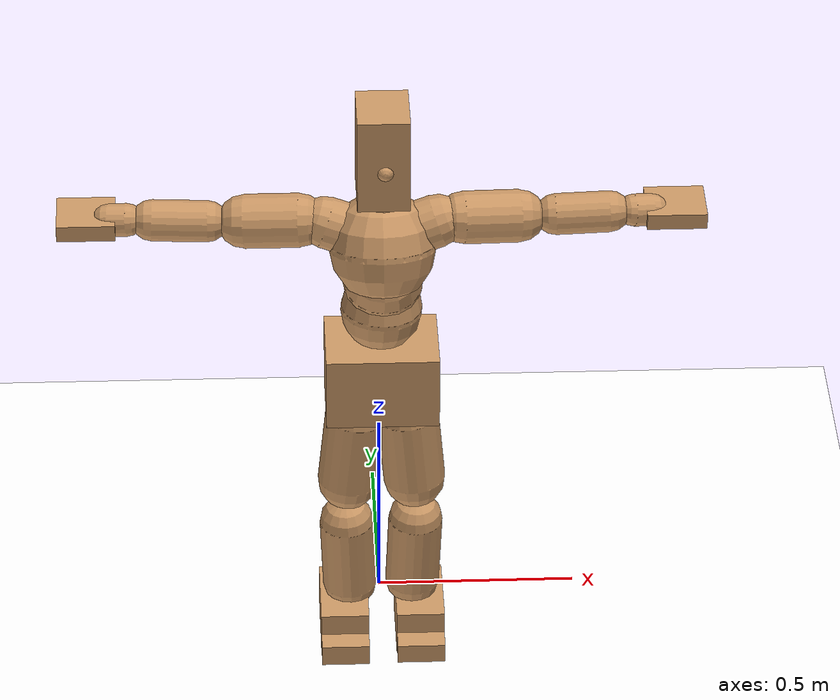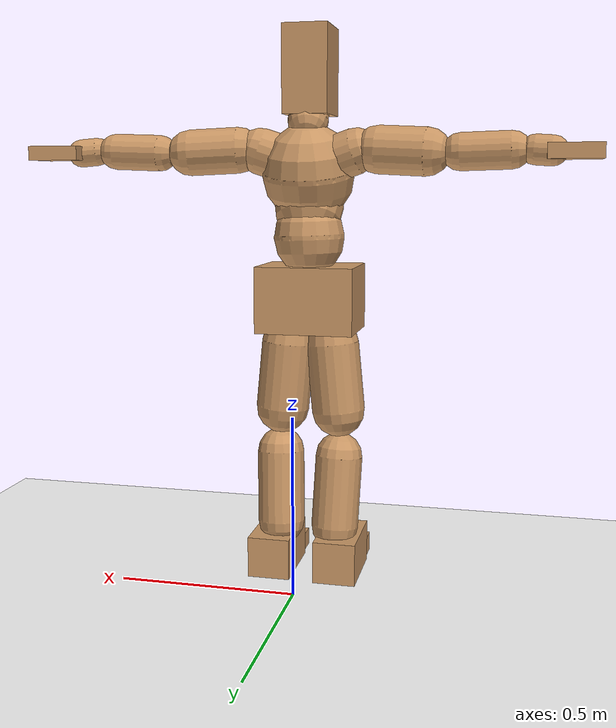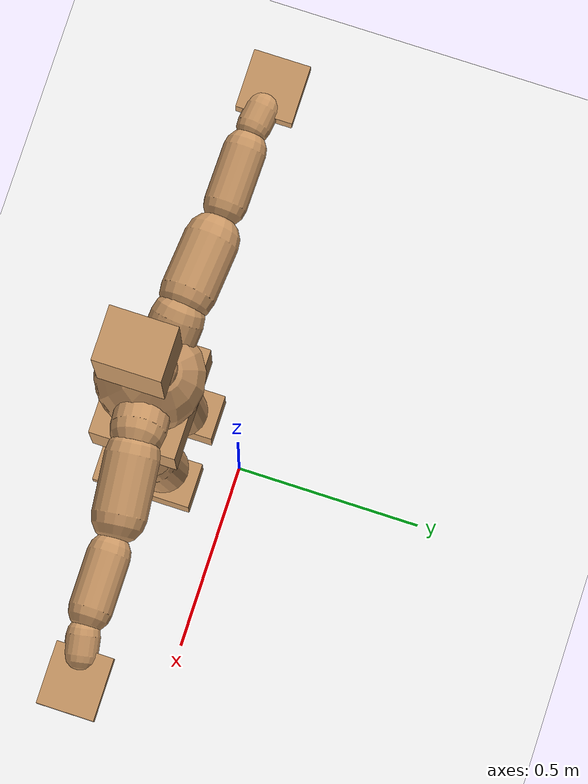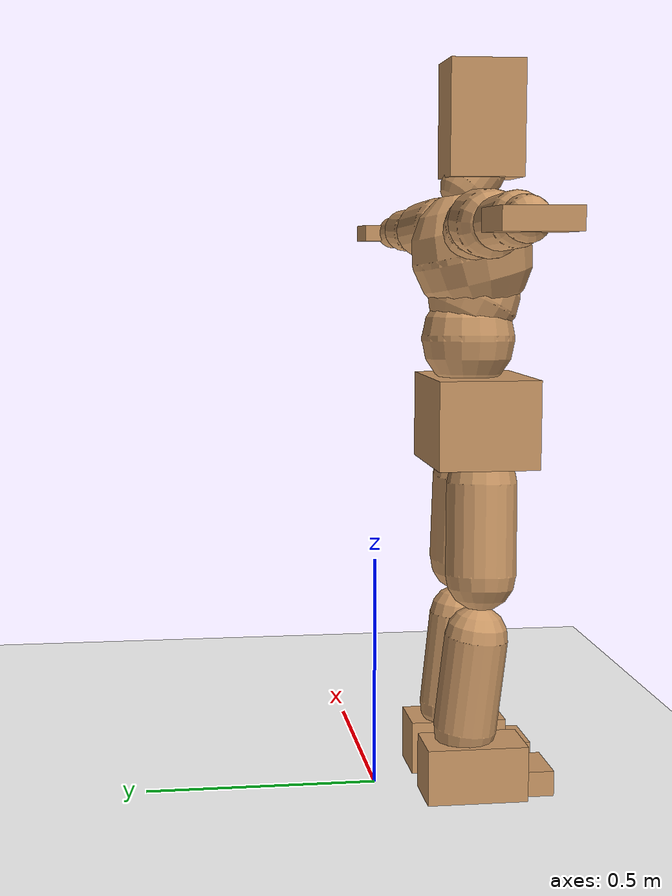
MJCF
<mujoco model="humanoid">
  <option integrator="implicitfast" />

  <visual>
    <global offwidth="1280" offheight="960" />
    <headlight active="1" ambient="0.34 0.34 0.34" diffuse="0.5 0.5 0.5" />
  </visual>

  <default>
    <joint damping="2" stiffness="2" armature="0.01" limited="true" solimplimit="0 .99 .01" />
    <geom condim="1" friction="0.7 0.005 0.0001" solimp=".99 .99 .003" solref="0.015 1" margin="0.001" rgba="0.8 0.6 .4 1" />
    <default class="smplcontact">
      <geom condim="3" friction="1. 0.005 0.0001" solref="0.015 1" solimp="0.98 0.98 0.001" priority="1" />
    </default>
    <default class="stiff_medium">
      <joint stiffness="10" />
    </default>
    <default class="stiff_medium_higher">
      <joint stiffness="50" />
    </default>
    <default class="stiff_high">
      <joint stiffness="100" />
    </default>
  </default>

  <asset>
    <texture type="skybox" builtin="gradient" rgb1="0.99 0.99 0.99" rgb2="0.608 0.828 0.892" width="100" />
    <texture builtin="flat" height="1278" mark="cross" markrgb="1 1 1" name="texgeom" random="0.01" rgb1="0.8 0.6 0.4" rgb2="0.8 0.6 0.4" type="cube" width="127" />
    <texture name="texplane" type="2d" builtin="checker" markrgb="1 1 1" rgb1="0.756 0.772 0.76" rgb2="0.6 0.6 0.6" width="100" height="100" />
    <material name="MatPlane" reflectance="0.5" texture="texplane" texrepeat="1 1" texuniform="true" />
    <material name="geom" texture="texgeom" texuniform="true" />
  </asset>

  <worldbody>
    <light name="tracking_light" pos="0 0 7" dir="0 0 -1" directional="true" cutoff="100" exponent="1" diffuse="1 1 1" specular="0.1 0.1 0.1" mode="trackcom" />
    <camera name="back" pos="0 3 2.4" xyaxes="-1 0 0 0 -1 2" mode="trackcom" />
    <camera name="side" pos="-3 0 2.4" xyaxes="0 -1 0 1 0 2" mode="trackcom" />
    <camera name="front_side" pos="-2.8 -2.8 0.8" xyaxes="0.5 -0.5 0 0.1 0.1 1" mode="trackcom" />
    <geom condim="3" name="floor" pos="0 0 0" rgba="1 1 1 1" size="100 100 .2" type="plane" material="MatPlane" />
    <body name="Pelvis" pos="-0.0018 -0.2233 0.815315" euler="90 0 0">
      <site name="Pelvis" size="0.01" />
      <freejoint name="Pelvis" />
      <geom type="box" pos="-0.0000 -0.0121 -0.0055" size="0.13897 0.09386 0.1079" quat="1.0000 0.0000 0.0000 0.0000" density="3165.830099" name="Pelvis" />
      <body name="L_Hip" pos="0.059075 -0.07769 -0.00578">
        <joint name="L_Hip_x" type="hinge" pos="0 0 0" axis="1 0 0" stiffness="13.073780909090909" range="-160.0 22.92" class="stiff_medium" damping="18.606181751312334" armature="0.011768762457390104"/>
        <joint name="L_Hip_y" type="hinge" pos="0 0 0" axis="0 1 0" stiffness="13.169240454545456" range="-70.0 70.0" class="stiff_medium" damping="15.891079179926692" armature="0.019175471689070602"/>
        <joint name="L_Hip_z" type="hinge" pos="0 0 0" axis="0 0 1" stiffness="13.149466477272727" range="-28.65 90.0" class="stiff_medium" damping="12.433800043881977" armature="0.011757084121887829"/>
        <geom type="capsule" density="2040.816327" fromto="0.005865 -0.06375 -0.000765 0.02329 -0.25517 -0.00306" size="0.076875" name="L_Hip" />
        <body name="L_Knee" pos="0.029155 -0.31892 -0.003825">
          <joint name="L_Knee_x" type="hinge" pos="0 0 0" axis="1 0 0" range="-5.16 171.89" damping="10.574349040779882" armature="0.012726679054983455" stiffness="2.745631272727273"/>
          <joint name="L_Knee_y" type="hinge" pos="0 0 0" axis="0 1 0" range="-4.58 6.88" damping="13.277882484058297" armature="0.02066682769323447" stiffness="2.6658385523255816"/>
          <joint name="L_Knee_z" type="hinge" pos="0 0 0" axis="0 0 1" range="-6.88 4.58" damping="10.590751418639035" armature="0.012665006073448865" stiffness="2.767567159090909"/>
          <geom type="capsule" density="1234.567901" fromto="-0.002295 -0.06766 -0.007395 -0.009265 -0.27064 -0.02975" size="0.067625" name="L_Knee" />
          <body name="L_Ankle" pos="-0.01156 -0.3383 -0.037145">
            <joint name="L_Ankle_x" type="hinge" pos="0 0 0" axis="1 0 0" range="-45.84 45.84" class="stiff_medium" damping="10.858081168115852" armature="0.01972671488124411" stiffness="16.60156"/>
            <joint name="L_Ankle_y" type="hinge" pos="0 0 0" axis="0 1 0" range="-74.48 22.92" class="stiff_medium" damping="5.484003572055841" armature="0.020128158758254064" stiffness="16.60156"/>
            <joint name="L_Ankle_z" type="hinge" pos="0 0 0" axis="0 0 1" range="-4.58 4.58" class="stiff_medium" damping="11.662080639657317" armature="0.022756249152668318" stiffness="16.60156"/>
            <geom type="box" pos="0.019805 -0.020315 0.02057" size="0.060375 0.058 0.10625" quat="1.0000 0.0000 0.0000 0.0000" density="449.071558" name="L_Ankle" class="smplcontact" />
            <body name="L_Toe" pos="0.02244 -0.04743 0.101405">
              <joint name="L_Toe_x" type="hinge" pos="0 0 0" axis="1 0 0" range="-91.67 22.92" armature="0.024280120203136288" damping="4.015409679520032" stiffness="3.320312"/>
              <joint name="L_Toe_y" type="hinge" pos="0 0 0" axis="0 1 0" range="-4.58 4.58" armature="0.02612278546549334" damping="4.164992150160745" stiffness="3.320312"/>
              <joint name="L_Toe_z" type="hinge" pos="0 0 0" axis="0 0 1" range="-4.58 4.58" armature="0.02984855544497264" damping="4.452112236379672" stiffness="3.320312"/>
              <geom type="box" pos="-0.00255 0.004675 0.02108" size="0.05975 0.025 0.062" quat="1.0000 0.0000 0.0000 0.0000" density="423.206892" name="L_Toe" class="smplcontact" />
            </body>
          </body>
        </body>
      </body>
      <body name="R_Hip" pos="-0.057545 -0.076925 -0.003655">
        <joint name="R_Hip_x" type="hinge" pos="0 0 0" axis="1 0 0" stiffness="13.073780909090909" range="-160.0 22.92" class="stiff_medium" damping="18.606181751312334" armature="0.011768762457390104"/>
        <joint name="R_Hip_y" type="hinge" pos="0 0 0" axis="0 1 0" stiffness="13.169240454545456" range="-70.0 70.0" class="stiff_medium" damping="15.891079179926692" armature="0.019175471689070602"/>
        <joint name="R_Hip_z" type="hinge" pos="0 0 0" axis="0 0 1" stiffness="13.149466477272727" range="-90.0 28.65" class="stiff_medium" damping="12.433800043881977" armature="0.011757084121887829"/>
        <geom type="capsule" density="2040.816327" fromto="-0.006545 -0.065025 -0.00153 -0.02601 -0.260185 -0.006035" size="0.07575" name="R_Hip" />
        <body name="R_Knee" pos="-0.032555 -0.32521 -0.007565">
          <joint name="R_Knee_x" type="hinge" pos="0 0 0" axis="1 0 0" range="-5.16 171.89" damping="10.574349040779882" armature="0.012726679054983455" stiffness="2.745631272727273"/>
          <joint name="R_Knee_y" type="hinge" pos="0 0 0" axis="0 1 0" range="-6.88 4.58" damping="13.277882484058297" armature="0.02066682769323447" stiffness="2.6658385523255816"/>
          <joint name="R_Knee_z" type="hinge" pos="0 0 0" axis="0 0 1" range="-4.58 6.88" damping="10.590751418639035" armature="0.012665006073448865" stiffness="2.767567159090909"/>
          <geom type="capsule" density="1234.567901" fromto="0.00272 -0.067745 -0.007225 0.01071 -0.270895 -0.02873" size="0.067625" name="R_Knee" />
          <body name="R_Ankle" pos="0.01343 -0.33864 -0.035955">
            <joint name="R_Ankle_x" type="hinge" pos="0 0 0" axis="1 0 0" range="-45.84 45.84" class="stiff_medium" damping="10.858081168115852" armature="0.01972671488124411" stiffness="16.60156"/>
            <joint name="R_Ankle_y" type="hinge" pos="0 0 0" axis="0 1 0" range="-22.92 74.48" class="stiff_medium" damping="5.484003572055841" armature="0.020128158758254064" stiffness="16.60156"/>
            <joint name="R_Ankle_z" type="hinge" pos="0 0 0" axis="0 0 1" range="-4.58 4.58" class="stiff_medium" damping="11.662080639657317" armature="0.022756249152668318" stiffness="16.60156"/>
            <geom type="box" pos="-0.01802 -0.01479 0.02176" size="0.060375 0.05975 0.108125" quat="1.0000 0.0000 0.0000 0.0000" density="434.700981" name="R_Ankle" class="smplcontact" />
            <body name="R_Toe" pos="-0.02159 -0.040885 0.104805">
              <joint name="R_Toe_x" type="hinge" pos="0 0 0" axis="1 0 0" range="-91.67 22.92" armature="0.024280120203136288" damping="4.015409679520032" stiffness="3.320312"/>
              <joint name="R_Toe_y" type="hinge" pos="0 0 0" axis="0 1 0" range="-4.58 4.58" armature="0.02612278546549334" damping="4.164992150160745" stiffness="3.320312"/>
              <joint name="R_Toe_z" type="hinge" pos="0 0 0" axis="0 0 1" range="-4.58 4.58" armature="0.02984855544497264" damping="4.452112236379672" stiffness="3.320312"/>
              <geom type="box" pos="0.00357 0.003825 0.019295" size="0.059875 0.027 0.061625" quat="1.0000 0.0000 0.0000 0.0000" density="407.384095" name="R_Toe" class="smplcontact" />
            </body>
          </body>
        </body>
      </body>
      <body name="Torso" pos="-0.0023 0.10028 -0.024564">
        <joint name="Torso_x" type="hinge" pos="0 0 0" axis="1 0 0" range="-25.78 57.3" class="stiff_medium" damping="21.78203772208357" armature="0.01368048624538345" stiffness="15.413914999999998"/>
        <joint name="Torso_y" type="hinge" pos="0 0 0" axis="0 1 0" range="-57.3 57.3" class="stiff_high" damping="28.75972056541958" armature="0.01343894671894338" stiffness="153.86650909090912"/>
        <joint name="Torso_z" type="hinge" pos="0 0 0" axis="0 0 1" range="-34.38 34.38" class="stiff_high" damping="29.14308243891432" armature="0.01331601534386346" stiffness="159.4544674418605"/>
        <geom type="capsule" density="2040.816327" fromto="0.0023 0.055936 0.00046 0.00276 0.068356 0.000552" size="0.09997" name="Torso" />
        <body name="Spine" pos="0.00506 0.124384 0.001012">
          <joint name="Spine_x" type="hinge" pos="0 0 0" axis="1 0 0" stiffness="14.839179545454543" range="-25.78 57.3" class="stiff_medium" damping="20.93586082016467" armature="0.013127717949895144"/>
          <joint name="Spine_y" type="hinge" pos="0 0 0" axis="0 1 0" stiffness="14.982025681818186" range="-57.3 57.3" class="stiff_high" damping="11.291535853835345" armature="0.013297056820600122"/>
          <joint name="Spine_z" type="hinge" pos="0 0 0" axis="0 0 1" stiffness="29.385771363636366" range="-34.38 34.38" class="stiff_high" damping="16.470994384249583" armature="0.012822421429407213"/>
          <geom type="capsule" density="2040.816327" fromto="0.000644 0.021896 0.010488 0.000736 0.026772 0.01288" size="0.09815" name="Spine" />
          <body name="Chest" pos="0.00138 0.048668 0.023368">
            <joint name="Chest_x" type="hinge" pos="0 0 0" axis="1 0 0" stiffness="13.892651395348839" range="-25.78 57.3" class="stiff_medium" damping="20.074418444732594" armature="0.012891940395965527"/>
            <joint name="Chest_y" type="hinge" pos="0 0 0" axis="0 1 0" stiffness="14.186495116279069" range="-57.3 57.3" class="stiff_high" damping="10.937424865746422" armature="0.013175741888822763"/>
            <joint name="Chest_z" type="hinge" pos="0 0 0" axis="0 0 1" stiffness="28.265347272727276" range="-34.38 34.38" class="stiff_high" damping="16.059717572286047" armature="0.012673278678041022"/>
            <geom type="capsule" density="2040.816327" fromto="-0.000828 0.062744 -0.015916 -0.00092 0.076636 -0.019504" size="0.13026" name="Chest" />
            <body name="Neck" pos="-0.002576 0.196788 -0.039468">
              <joint name="Neck_x" type="hinge" pos="0 0 0" axis="1 0 0" range="-28.65 57.3" class="stiff_medium_higher" damping="11.982959901574276" armature="0.011956978304620915" stiffness="60.04498977272728"/>
              <joint name="Neck_y" type="hinge" pos="0 0 0" axis="0 1 0" range="-40.11 40.11" class="stiff_medium_higher" damping="12.449102292180257" armature="0.012985674807470574" stiffness="59.673505681818185"/>
              <joint name="Neck_z" type="hinge" pos="0 0 0" axis="0 0 1" range="-40.11 40.11" class="stiff_medium_higher" damping="11.853451088854268" armature="0.011933898341970265" stiffness="58.86773068181819"/>
              <geom type="capsule" density="1000" fromto="0.00092 0.01196 0.009476 0.003772 0.04784 0.037812" size="0.05668" name="Neck" />
              <body name="Head" pos="0.0052 0.065 0.0513">
                <joint name="Head_x" type="hinge" pos="0 0 0" axis="1 0 0" range="-28.65 57.3" class="stiff_medium_higher" damping="2.367934413545384" armature="0.012109088406980932" stiffness="57.88125000000001"/>
                <joint name="Head_y" type="hinge" pos="0 0 0" axis="0 1 0" range="-40.11 40.11" class="stiff_medium_higher" damping="2.425797531188864" armature="0.012708117184584793" stiffness="57.88125000000001"/>
                <joint name="Head_z" type="hinge" pos="0 0 0" axis="0 0 1" range="-40.11 40.11" class="stiff_medium_higher" damping="2.3650325814463797" armature="0.012079427947960106" stiffness="57.88125000000001"/>
                <geom type="box" pos="-0.0042 0.0876 -0.0116" size="0.06363 0.12117 0.0798" quat="1.0000 0.0000 0.0000 0.0000" density="1018.069894" name="Head" />
                <geom type="capsule" name="nose" size="0.021 0.0105" pos="0 0.07 0.05" quat="1 0 0 0" mass="0" contype="0" conaffinity="0" />
              </body>
            </body>
            <body name="L_Thorax" pos="0.069344 0.107096 -0.030008">
              <joint name="L_Thorax_x" type="hinge" pos="0 0 0" axis="1 0 0" range="-10.89 4.58" class="stiff_medium_higher" damping="31.926547920163337" armature="0.018089847829593754" stiffness="70.43346022727273"/>
              <joint name="L_Thorax_y" type="hinge" pos="0 0 0" axis="0 1 0" range="-28.65 17.19" class="stiff_medium_higher" damping="26.657341715226814" armature="0.012729077692042874" stiffness="69.78253693181817"/>
              <joint name="L_Thorax_z" type="hinge" pos="0 0 0" axis="0 0 1" range="-31.51 40.11" class="stiff_medium_higher" damping="26.65448952524613" armature="0.01272417509009733" stiffness="69.79448636363637"/>
              <geom type="capsule" density="1000" fromto="0.016016 0.005368 -0.001584 0.064064 0.021472 -0.006248" size="0.065125" name="L_Thorax" />
              <body name="L_Shoulder" pos="0.08008 0.02684 -0.007832">
                <joint name="L_Shoulder_x" type="hinge" pos="0 0 0" axis="1 0 0" range="-97.4 97.4" class="stiff_medium" damping="10.106316520013454" armature="0.0200647915697496" stiffness="14.139974886363635"/>
                <joint name="L_Shoulder_y" type="hinge" pos="0 0 0" axis="0 1 0" range="-108.86 80.21" class="stiff_medium" damping="8.069438843362464" armature="0.012872507672728366" stiffness="14.05144568181818"/>
                <joint name="L_Shoulder_z" type="hinge" pos="0 0 0" axis="0 0 1" range="-97.4 85.94" class="stiff_medium" damping="8.05582145378768" armature="0.01286568736071838" stiffness="14.011485113636365"/>
                <geom type="capsule" density="1000" fromto="0.045672 -0.002288 -0.00484 0.182776 -0.008976 -0.01936" size="0.064625" name="L_Shoulder" />
                <body name="L_Elbow" pos="0.228448 -0.011264 -0.0242">
                  <joint name="L_Elbow_x" type="hinge" pos="0 0 0" axis="1 0 0" range="-17.19 4.58" damping="9.241614845448577" armature="0.02348223130281801" stiffness="2.9096875454545454"/>
                  <joint name="L_Elbow_y" type="hinge" pos="0 0 0" axis="0 1 0" range="-180.0 17.19" damping="7.028392132676079" armature="0.013583098268946997" stiffness="2.909397840909091"/>
                  <joint name="L_Elbow_z" type="hinge" pos="0 0 0" axis="0 0 1" range="-100.84 4.58" damping="7.021007416718318" armature="0.013547290277453805" stiffness="2.910961181818182"/>
                  <geom type="capsule" density="1000" fromto="0.043824 0.001584 -0.000176 0.175472 0.006336 -0.000792" size="0.050625" name="L_Elbow" />
                  <body name="L_Wrist" pos="0.219296 0.00792 -0.001056">
                    <joint name="L_Wrist_x" type="hinge" pos="0 0 0" axis="1 0 0" range="-180.0 22.92" armature="0.02507321395586134" damping="4.04143069166319" stiffness="3.2570938181818185"/>
                    <joint name="L_Wrist_y" type="hinge" pos="0 0 0" axis="0 1 0" range="-17.19 17.19" armature="0.016443129591718578" damping="3.256601051716133" stiffness="3.2248880454545454"/>
                    <joint name="L_Wrist_z" type="hinge" pos="0 0 0" axis="0 0 1" range="-22.92 22.92" armature="0.015946735012677977" damping="3.2128653230319313" stiffness="3.236557068181818"/>
                    <geom type="capsule" density="1000" fromto="0.014784 -0.001408 -0.00264 0.059136 -0.00572 -0.01056" size="0.03975" name="L_Wrist" class="smplcontact" />
                    <body name="L_Hand" pos="0.07392 -0.007216 -0.013112">
                      <joint name="L_Hand_x" type="hinge" pos="0 0 0" axis="1 0 0" range="-17.19 17.19" armature="0.029846982595580208" damping="4.529878644562279" stiffness="3.4375"/>
                      <joint name="L_Hand_y" type="hinge" pos="0 0 0" axis="0 1 0" range="-51.57 51.57" armature="0.022407650382607756" damping="3.924953456799562" stiffness="3.4375"/>
                      <joint name="L_Hand_z" type="hinge" pos="0 0 0" axis="0 0 1" range="-91.67 91.67" armature="0.020424594737039108" damping="3.747253511802262" stiffness="3.4375"/>
                      <geom type="box" pos="0.043384 0.00088 -0.005104" size="0.073125 0.01975 0.06725" quat="1.0000 0.0000 0.0000 0.0000" density="400.552564" name="L_Hand" class="smplcontact" />
                    </body>
                  </body>
                </body>
              </body>
            </body>
            <body name="R_Thorax" pos="-0.071984 0.104544 -0.033968">
              <joint name="R_Thorax_x" type="hinge" pos="0 0 0" axis="1 0 0" range="-10.89 4.58" class="stiff_medium_higher" damping="31.926547920163337" armature="0.018089847829593754" stiffness="70.43346022727273"/>
              <joint name="R_Thorax_y" type="hinge" pos="0 0 0" axis="0 1 0" range="-17.19 28.65" class="stiff_medium_higher" damping="26.657341715226814" armature="0.012729077692042874" stiffness="69.78253693181817"/>
              <joint name="R_Thorax_z" type="hinge" pos="0 0 0" axis="0 0 1" range="-40.11 31.51" class="stiff_medium_higher" damping="26.65448952524613" armature="0.01272417509009733" stiffness="69.79448636363637"/>
              <geom type="capsule" density="1000" fromto="-0.016896 0.00572 -0.001584 -0.067584 0.02288 -0.006424" size="0.063875" name="R_Thorax" />
              <body name="R_Shoulder" pos="-0.08448 0.028688 -0.008008">
                <joint name="R_Shoulder_x" type="hinge" pos="0 0 0" axis="1 0 0" range="-97.4 97.4" class="stiff_medium" damping="10.106316520013454" armature="0.0200647915697496" stiffness="14.139974886363635"/>
                <joint name="R_Shoulder_y" type="hinge" pos="0 0 0" axis="0 1 0" range="-80.21 108.86" class="stiff_medium" damping="8.069438843362464" armature="0.012872507672728366" stiffness="14.05144568181818"/>
                <joint name="R_Shoulder_z" type="hinge" pos="0 0 0" axis="0 0 1" range="-85.94 97.4" class="stiff_medium" damping="8.05582145378768" armature="0.01286568736071838" stiffness="14.011485113636365"/>
                <geom type="capsule" density="1000" fromto="-0.044616 -0.002376 -0.003784 -0.17864 -0.009416 -0.015048" size="0.066375" name="R_Shoulder" />
                <body name="R_Elbow" pos="-0.223256 -0.011704 -0.018832">
                  <joint name="R_Elbow_x" type="hinge" pos="0 0 0" axis="1 0 0" range="-17.19 4.58" damping="9.241614845448577" armature="0.02348223130281801" stiffness="2.9096875454545454"/>
                  <joint name="R_Elbow_y" type="hinge" pos="0 0 0" axis="0 1 0" range="-17.19 180.0" damping="7.028392132676079" armature="0.013583098268946997" stiffness="2.909397840909091"/>
                  <joint name="R_Elbow_z" type="hinge" pos="0 0 0" axis="0 0 1" range="-4.58 100.84" damping="7.021007416718318" armature="0.013547290277453805" stiffness="2.910961181818182"/>
                  <geom type="capsule" density="1000" fromto="-0.044968 0.001408 -0.000968 -0.179696 0.005456 -0.003872" size="0.051" name="R_Elbow" />
                  <body name="R_Wrist" pos="-0.224664 0.006864 -0.004928">
                    <joint name="R_Wrist_x" type="hinge" pos="0 0 0" axis="1 0 0" range="-180.0 22.92" armature="0.02507321395586134" damping="4.04143069166319" stiffness="3.2570938181818185"/>
                    <joint name="R_Wrist_y" type="hinge" pos="0 0 0" axis="0 1 0" range="-17.19 17.19" armature="0.016443129591718578" damping="3.256601051716133" stiffness="3.2248880454545454"/>
                    <joint name="R_Wrist_z" type="hinge" pos="0 0 0" axis="0 0 1" range="-22.92 22.92" armature="0.015946735012677977" damping="3.2128653230319313" stiffness="3.236557068181818"/>
                    <geom type="capsule" density="1000" fromto="-0.014872 -0.001056 -0.001848 -0.059576 -0.004312 -0.007304" size="0.04075" name="R_Wrist" class="smplcontact" />
                    <body name="R_Hand" pos="-0.074448 -0.005368 -0.009064">
                      <joint name="R_Hand_x" type="hinge" pos="0 0 0" axis="1 0 0" range="-17.19 17.19" armature="0.029846982595580208" damping="4.529878644562279" stiffness="3.4375"/>
                      <joint name="R_Hand_y" type="hinge" pos="0 0 0" axis="0 1 0" range="-51.57 51.57" armature="0.022407650382607756" damping="3.924953456799562" stiffness="3.4375"/>
                      <joint name="R_Hand_z" type="hinge" pos="0 0 0" axis="0 0 1" range="-91.67 91.67" armature="0.020424594737039108" damping="3.747253511802262" stiffness="3.4375"/>
                      <geom type="box" pos="-0.040656 -0.000792 -0.006952" size="0.071125 0.0205 0.06825" quat="1.0000 0.0000 0.0000 0.0000" density="403.679611" name="R_Hand" class="smplcontact" />
                    </body>
                  </body>
                </body>
              </body>
            </body>
          </body>
        </body>
      </body>
    </body>
  </worldbody>
  <actuator>
    <general name="L_Hip_x" joint="L_Hip_x" biastype="affine" gainprm="375.6490306603441" biasprm="-281.51087427793556 -235.32805636363636 -2.4808242335083115" ctrllimited="true" ctrlrange="-1 1" forcerange="-470.6561127272727 470.6561127272727" />
    <general name="L_Hip_y" joint="L_Hip_y" biastype="affine" gainprm="289.6067234575026" biasprm="0.0 -237.0463281818182 -3.1782158359853385" ctrllimited="true" ctrlrange="-1 1" forcerange="-474.0926563636364 474.0926563636364" />
    <general name="L_Hip_z" joint="L_Hip_z" biastype="affine" gainprm="245.07316066010682" biasprm="126.71924489252046 -236.69039659090907 -2.4867600087763955" ctrllimited="true" ctrlrange="-1 1" forcerange="-473.38079318181815 473.38079318181815" />
    <general name="L_Knee_x" joint="L_Knee_x" biastype="affine" gainprm="381.7930560250363" biasprm="359.538866032501 -247.1068145454546 -2.6435872601949706" ctrllimited="true" ctrlrange="-1 1" forcerange="-494.2136290909092 494.2136290909092" />
    <general name="L_Knee_y" joint="L_Knee_y" biastype="affine" gainprm="23.994314295355753" biasprm="4.815612816694435 -239.92546970930235 -3.3194706210145744" ctrllimited="true" ctrlrange="-1 1" forcerange="-479.8509394186047 479.8509394186047" />
    <general name="L_Knee_z" joint="L_Knee_z" biastype="affine" gainprm="24.90993919748141" biasprm="-4.999376976806915 -249.0810443181818 -2.647687854659759" ctrllimited="true" ctrlrange="-1 1" forcerange="-498.1620886363636 498.1620886363636" />
    <general name="L_Ankle_x" joint="L_Ankle_x" biastype="affine" gainprm="119.54003683702636" biasprm="0.0 -149.41404 -3.6193603893719506" ctrllimited="true" ctrlrange="-1 1" forcerange="-298.82808 298.82808" />
    <general name="L_Ankle_y" joint="L_Ankle_y" biastype="affine" gainprm="126.99825030460697" biasprm="-67.2282318860938 -149.41404 -3.656002381370561" ctrllimited="true" ctrlrange="-1 1" forcerange="-298.82808 298.82808" />
    <general name="L_Ankle_z" joint="L_Ankle_z" biastype="affine" gainprm="11.943572615915807" biasprm="0.0 -149.41404 -3.8873602132191056" ctrllimited="true" ctrlrange="-1 1" forcerange="-298.82808 298.82808" />
    <general name="L_Toe_x" joint="L_Toe_x" biastype="affine" gainprm="119.52960576923951" biasprm="-71.71359103442897 -119.531232 -1.606163871808013" ctrllimited="true" ctrlrange="-1 1" forcerange="-239.062464 239.062464" />
    <general name="L_Toe_y" joint="L_Toe_y" biastype="affine" gainprm="9.554858092732646" biasprm="0.0 -119.531232 -1.665996860064298" ctrllimited="true" ctrlrange="-1 1" forcerange="-239.062464 239.062464" />
    <general name="L_Toe_z" joint="L_Toe_z" biastype="affine" gainprm="9.554858092732646" biasprm="0.0 -119.531232 -1.780844894551869" ctrllimited="true" ctrlrange="-1 1" forcerange="-239.062464 239.062464" />
    <general name="R_Hip_x" joint="R_Hip_x" biastype="affine" gainprm="375.6490306603441" biasprm="-281.51087427793556 -235.32805636363636 -2.4808242335083115" ctrllimited="true" ctrlrange="-1 1" forcerange="-470.6561127272727 470.6561127272727" />
    <general name="R_Hip_y" joint="R_Hip_y" biastype="affine" gainprm="289.6067234575026" biasprm="0.0 -237.0463281818182 -3.1782158359853385" ctrllimited="true" ctrlrange="-1 1" forcerange="-474.0926563636364 474.0926563636364" />
    <general name="R_Hip_z" joint="R_Hip_z" biastype="affine" gainprm="245.07316066010682" biasprm="-126.71924489252046 -236.69039659090907 -2.4867600087763955" ctrllimited="true" ctrlrange="-1 1" forcerange="-473.38079318181815 473.38079318181815" />
    <general name="R_Knee_x" joint="R_Knee_x" biastype="affine" gainprm="381.7930560250363" biasprm="359.538866032501 -247.1068145454546 -2.6435872601949706" ctrllimited="true" ctrlrange="-1 1" forcerange="-494.2136290909092 494.2136290909092" />
    <general name="R_Knee_y" joint="R_Knee_y" biastype="affine" gainprm="23.994314295355753" biasprm="-4.815612816694435 -239.92546970930235 -3.3194706210145744" ctrllimited="true" ctrlrange="-1 1" forcerange="-479.8509394186047 479.8509394186047" />
    <general name="R_Knee_z" joint="R_Knee_z" biastype="affine" gainprm="24.90993919748141" biasprm="4.999376976806915 -249.0810443181818 -2.647687854659759" ctrllimited="true" ctrlrange="-1 1" forcerange="-498.1620886363636 498.1620886363636" />
    <general name="R_Ankle_x" joint="R_Ankle_x" biastype="affine" gainprm="119.54003683702636" biasprm="0.0 -149.41404 -3.6193603893719506" ctrllimited="true" ctrlrange="-1 1" forcerange="-298.82808 298.82808" />
    <general name="R_Ankle_y" joint="R_Ankle_y" biastype="affine" gainprm="126.99825030460697" biasprm="67.2282318860938 -149.41404 -3.656002381370561" ctrllimited="true" ctrlrange="-1 1" forcerange="-298.82808 298.82808" />
    <general name="R_Ankle_z" joint="R_Ankle_z" biastype="affine" gainprm="11.943572615915807" biasprm="0.0 -149.41404 -3.8873602132191056" ctrllimited="true" ctrlrange="-1 1" forcerange="-298.82808 298.82808" />
    <general name="R_Toe_x" joint="R_Toe_x" biastype="affine" gainprm="119.52960576923951" biasprm="-71.71359103442897 -119.531232 -1.606163871808013" ctrllimited="true" ctrlrange="-1 1" forcerange="-239.062464 239.062464" />
    <general name="R_Toe_y" joint="R_Toe_y" biastype="affine" gainprm="9.554858092732646" biasprm="0.0 -119.531232 -1.665996860064298" ctrllimited="true" ctrlrange="-1 1" forcerange="-239.062464 239.062464" />
    <general name="R_Toe_z" joint="R_Toe_z" biastype="affine" gainprm="9.554858092732646" biasprm="0.0 -119.531232 -1.780844894551869" ctrllimited="true" ctrlrange="-1 1" forcerange="-239.062464 239.062464" />
    <general name="Torso_x" joint="Torso_x" biastype="affine" gainprm="268.2057357277292" biasprm="101.75547412299017 -369.93395999999996 -5.8085433925556185" ctrllimited="true" ctrlrange="-1 1" forcerange="-554.9009399999999 554.9009399999999" />
    <general name="Torso_y" joint="Torso_y" biastype="affine" gainprm="369.30682346943945" biasprm="0.0 -369.27962181818185 -5.751944113083916" ctrllimited="true" ctrlrange="-1 1" forcerange="-553.9194327272728 553.9194327272728" />
    <general name="Torso_z" joint="Torso_z" biastype="affine" gainprm="229.63134683521818" biasprm="0.0 -382.6907218604652 -5.828616487782864" ctrllimited="true" ctrlrange="-1 1" forcerange="-574.0360827906977 574.0360827906977" />
    <general name="Spine_x" joint="Spine_x" biastype="affine" gainprm="258.2052040370345" biasprm="97.96133884505689 -356.14030909090906 -5.582896218710578" ctrllimited="true" ctrlrange="-1 1" forcerange="-534.2104636363636 534.2104636363636" />
    <general name="Spine_y" joint="Spine_y" biastype="affine" gainprm="359.59510268870724" biasprm="0.0 -359.56861636363647 -5.645767926917673" ctrllimited="true" ctrlrange="-1 1" forcerange="-539.3529245454547 539.3529245454547" />
    <general name="Spine_z" joint="Spine_z" biastype="affine" gainprm="211.59313891547092" biasprm="0.0 -352.6292563636364 -5.4903314614165275" ctrllimited="true" ctrlrange="-1 1" forcerange="-528.9438845454546 528.9438845454546" />
    <general name="Chest_x" joint="Chest_x" biastype="affine" gainprm="241.73539225423258" biasprm="91.71280168335832 -333.4236334883721 -5.353178251928692" ctrllimited="true" ctrlrange="-1 1" forcerange="-500.1354502325582 500.1354502325582" />
    <general name="Chest_y" joint="Chest_y" biastype="affine" gainprm="340.5009627184221" biasprm="0.0 -340.47588279069765 -5.468712432873211" ctrllimited="true" ctrlrange="-1 1" forcerange="-510.7138241860465 510.7138241860465" />
    <general name="Chest_z" joint="Chest_z" biastype="affine" gainprm="203.52549123053262" biasprm="0.0 -339.1841672727273 -5.353239190762016" ctrllimited="true" ctrlrange="-1 1" forcerange="-508.77625090909095 508.77625090909095" />
    <general name="Neck_x" joint="Neck_x" biastype="affine" gainprm="32.426682895962884" biasprm="10.808894298654295 -43.23239263636364 -0.958636792125942" ctrllimited="true" ctrlrange="-1 1" forcerange="-86.46478527272728 86.46478527272728" />
    <general name="Neck_y" joint="Neck_y" biastype="affine" gainprm="30.077662262939942" biasprm="0.0 -42.96492409090909 -0.9959281833744206" ctrllimited="true" ctrlrange="-1 1" forcerange="-85.92984818181819 85.92984818181819" />
    <general name="Neck_z" joint="Neck_z" biastype="affine" gainprm="29.671521748267537" biasprm="0.0 -42.384766090909096 -0.9482760871083414" ctrllimited="true" ctrlrange="-1 1" forcerange="-84.76953218181819 84.76953218181819" />
    <general name="Head_x" joint="Head_x" biastype="affine" gainprm="20.838784900856098" biasprm="6.9462616336186995 -27.783 -0.9471737654181537" ctrllimited="true" ctrlrange="-1 1" forcerange="-55.566 55.566" />
    <general name="Head_y" joint="Head_y" biastype="affine" gainprm="19.44953257413236" biasprm="0.0 -27.783 -0.9703190124755458" ctrllimited="true" ctrlrange="-1 1" forcerange="-55.566 55.566" />
    <general name="Head_z" joint="Head_z" biastype="affine" gainprm="19.44953257413236" biasprm="0.0 -27.783 -0.946013032578552" ctrllimited="true" ctrlrange="-1 1" forcerange="-55.566 55.566" />
    <general name="L_Thorax_x" joint="L_Thorax_x" biastype="affine" gainprm="22.820646944170534" biasprm="-9.308227680524636 -169.04030454545455 -2.554123833613067" ctrllimited="true" ctrlrange="-1 1" forcerange="-338.0806090909091 338.0806090909091" />
    <general name="L_Thorax_y" joint="L_Thorax_y" biastype="affine" gainprm="66.99617012225113" biasprm="-16.749042530562782 -167.47808863636362 -2.1325873372181454" ctrllimited="true" ctrlrange="-1 1" forcerange="-334.95617727272725 334.95617727272725" />
    <general name="L_Thorax_z" joint="L_Thorax_z" biastype="affine" gainprm="104.69213242254166" biasprm="12.571241815608184 -167.50676727272727 -2.1323591620196907" ctrllimited="true" ctrlrange="-1 1" forcerange="-335.01353454545455 335.01353454545455" />
    <general name="L_Shoulder_x" joint="L_Shoulder_x" biastype="affine" gainprm="115.378848408255" biasprm="0.0 -67.87187945454545 -2.6950177386702543" ctrllimited="true" ctrlrange="-1 1" forcerange="-135.7437589090909 135.7437589090909" />
    <general name="L_Shoulder_y" joint="L_Shoulder_y" biastype="affine" gainprm="111.28387567694092" biasprm="-16.862976877052716 -67.44693927272726 -2.1518503582299906" ctrllimited="true" ctrlrange="-1 1" forcerange="-134.89387854545453 134.89387854545453" />
    <general name="L_Shoulder_z" joint="L_Shoulder_z" biastype="affine" gainprm="107.60439400870884" biasprm="-6.726008265189298 -67.25512854545454 -2.148219054343381" ctrllimited="true" ctrlrange="-1 1" forcerange="-134.51025709090908 134.51025709090908" />
    <general name="L_Elbow_x" joint="L_Elbow_x" biastype="affine" gainprm="19.900072418099818" biasprm="-11.526867854489609 -104.74875163636364 -1.4786583752717724" ctrllimited="true" ctrlrange="-1 1" forcerange="-209.49750327272727 209.49750327272727" />
    <general name="L_Elbow_y" joint="L_Elbow_y" biastype="affine" gainprm="180.23447751717313" biasprm="-148.8106662841471 -104.73832227272727 -1.1245427412281728" ctrllimited="true" ctrlrange="-1 1" forcerange="-209.47664454545455 209.47664454545455" />
    <general name="L_Elbow_z" joint="L_Elbow_z" biastype="affine" gainprm="96.40716204776793" biasprm="-88.03029234223243 -104.79460254545455 -1.123361186674931" ctrllimited="true" ctrlrange="-1 1" forcerange="-209.5892050909091 209.5892050909091" />
    <general name="L_Wrist_x" joint="L_Wrist_x" biastype="affine" gainprm="34.60618652205673" biasprm="-26.788585545459647 -19.54256290909091 -1.6165722766652761" ctrllimited="true" ctrlrange="-1 1" forcerange="-39.08512581818182 39.08512581818182" />
    <general name="L_Wrist_y" joint="L_Wrist_y" biastype="affine" gainprm="5.805226071358992" biasprm="0.0 -19.349328272727274 -1.3026404206864532" ctrllimited="true" ctrlrange="-1 1" forcerange="-38.69865654545455 38.69865654545455" />
    <general name="L_Wrist_z" joint="L_Wrist_z" biastype="affine" gainprm="7.768309145959628" biasprm="0.0 -19.41934240909091 -1.2851461292127726" ctrllimited="true" ctrlrange="-1 1" forcerange="-38.83868481818182 38.83868481818182" />
    <general name="L_Hand_x" joint="L_Hand_x" biastype="affine" gainprm="6.1879557798676466" biasprm="0.0 -20.625 -1.8119514578249118" ctrllimited="true" ctrlrange="-1 1" forcerange="-41.25 41.25" />
    <general name="L_Hand_y" joint="L_Hand_y" biastype="affine" gainprm="18.563867339602936" biasprm="0.0 -20.625 -1.569981382719825" ctrllimited="true" ctrlrange="-1 1" forcerange="-41.25 41.25" />
    <general name="L_Hand_z" joint="L_Hand_z" biastype="affine" gainprm="32.99883108437854" biasprm="0.0 -20.625 -1.4989014047209048" ctrllimited="true" ctrlrange="-1 1" forcerange="-41.25 41.25" />
    <general name="R_Thorax_x" joint="R_Thorax_x" biastype="affine" gainprm="22.820646944170534" biasprm="-9.308227680524636 -169.04030454545455 -2.554123833613067" ctrllimited="true" ctrlrange="-1 1" forcerange="-338.0806090909091 338.0806090909091" />
    <general name="R_Thorax_y" joint="R_Thorax_y" biastype="affine" gainprm="66.99617012225113" biasprm="16.74904253056277 -167.47808863636362 -2.1325873372181454" ctrllimited="true" ctrlrange="-1 1" forcerange="-334.95617727272725 334.95617727272725" />
    <general name="R_Thorax_z" joint="R_Thorax_z" biastype="affine" gainprm="104.69213242254166" biasprm="-12.571241815608184 -167.50676727272727 -2.1323591620196907" ctrllimited="true" ctrlrange="-1 1" forcerange="-335.01353454545455 335.01353454545455" />
    <general name="R_Shoulder_x" joint="R_Shoulder_x" biastype="affine" gainprm="115.378848408255" biasprm="0.0 -67.87187945454545 -2.6950177386702543" ctrllimited="true" ctrlrange="-1 1" forcerange="-135.7437589090909 135.7437589090909" />
    <general name="R_Shoulder_y" joint="R_Shoulder_y" biastype="affine" gainprm="111.28387567694092" biasprm="16.862976877052716 -67.44693927272726 -2.1518503582299906" ctrllimited="true" ctrlrange="-1 1" forcerange="-134.89387854545453 134.89387854545453" />
    <general name="R_Shoulder_z" joint="R_Shoulder_z" biastype="affine" gainprm="107.60439400870884" biasprm="6.726008265189284 -67.25512854545454 -2.148219054343381" ctrllimited="true" ctrlrange="-1 1" forcerange="-134.51025709090908 134.51025709090908" />
    <general name="R_Elbow_x" joint="R_Elbow_x" biastype="affine" gainprm="19.900072418099818" biasprm="-11.526867854489609 -104.74875163636364 -1.4786583752717724" ctrllimited="true" ctrlrange="-1 1" forcerange="-209.49750327272727 209.49750327272727" />
    <general name="R_Elbow_y" joint="R_Elbow_y" biastype="affine" gainprm="180.23447751717313" biasprm="148.8106662841471 -104.73832227272727 -1.1245427412281728" ctrllimited="true" ctrlrange="-1 1" forcerange="-209.47664454545455 209.47664454545455" />
    <general name="R_Elbow_z" joint="R_Elbow_z" biastype="affine" gainprm="96.40716204776793" biasprm="88.03029234223241 -104.79460254545455 -1.123361186674931" ctrllimited="true" ctrlrange="-1 1" forcerange="-209.5892050909091 209.5892050909091" />
    <general name="R_Wrist_x" joint="R_Wrist_x" biastype="affine" gainprm="34.60618652205673" biasprm="-26.788585545459647 -19.54256290909091 -1.6165722766652761" ctrllimited="true" ctrlrange="-1 1" forcerange="-39.08512581818182 39.08512581818182" />
    <general name="R_Wrist_y" joint="R_Wrist_y" biastype="affine" gainprm="5.805226071358992" biasprm="0.0 -19.349328272727274 -1.3026404206864532" ctrllimited="true" ctrlrange="-1 1" forcerange="-38.69865654545455 38.69865654545455" />
    <general name="R_Wrist_z" joint="R_Wrist_z" biastype="affine" gainprm="7.768309145959628" biasprm="0.0 -19.41934240909091 -1.2851461292127726" ctrllimited="true" ctrlrange="-1 1" forcerange="-38.83868481818182 38.83868481818182" />
    <general name="R_Hand_x" joint="R_Hand_x" biastype="affine" gainprm="6.1879557798676466" biasprm="0.0 -20.625 -1.8119514578249118" ctrllimited="true" ctrlrange="-1 1" forcerange="-41.25 41.25" />
    <general name="R_Hand_y" joint="R_Hand_y" biastype="affine" gainprm="18.563867339602936" biasprm="0.0 -20.625 -1.569981382719825" ctrllimited="true" ctrlrange="-1 1" forcerange="-41.25 41.25" />
    <general name="R_Hand_z" joint="R_Hand_z" biastype="affine" gainprm="32.99883108437854" biasprm="0.0 -20.625 -1.4989014047209048" ctrllimited="true" ctrlrange="-1 1" forcerange="-41.25 41.25" />
  </actuator>
  <contact>
    <exclude body1="Torso" body2="Chest" />
    <exclude body1="Head" body2="Chest" />
    <exclude body1="R_Knee" body2="R_Toe" />
    <exclude body1="R_Knee" body2="L_Ankle" />
    <exclude body1="R_Knee" body2="L_Toe" />
    <exclude body1="L_Knee" body2="L_Toe" />
    <exclude body1="L_Knee" body2="R_Ankle" />
    <exclude body1="L_Knee" body2="R_Toe" />
    <exclude body1="L_Shoulder" body2="Chest" />
    <exclude body1="R_Shoulder" body2="Chest" />
  </contact>
  <sensor>
    <framelinvel name="sensor_Pelvis_framelinvel" objtype="xbody" objname="Pelvis" />
    <framelinvel name="sensor_L_Hip_framelinvel" objtype="xbody" objname="L_Hip" />
    <framelinvel name="sensor_L_Knee_framelinvel" objtype="xbody" objname="L_Knee" />
    <framelinvel name="sensor_L_Ankle_framelinvel" objtype="xbody" objname="L_Ankle" />
    <framelinvel name="sensor_L_Toe_framelinvel" objtype="xbody" objname="L_Toe" />
    <framelinvel name="sensor_R_Hip_framelinvel" objtype="xbody" objname="R_Hip" />
    <framelinvel name="sensor_R_Knee_framelinvel" objtype="xbody" objname="R_Knee" />
    <framelinvel name="sensor_R_Ankle_framelinvel" objtype="xbody" objname="R_Ankle" />
    <framelinvel name="sensor_R_Toe_framelinvel" objtype="xbody" objname="R_Toe" />
    <framelinvel name="sensor_Torso_framelinvel" objtype="xbody" objname="Torso" />
    <framelinvel name="sensor_Spine_framelinvel" objtype="xbody" objname="Spine" />
    <framelinvel name="sensor_Chest_framelinvel" objtype="xbody" objname="Chest" />
    <framelinvel name="sensor_Neck_framelinvel" objtype="xbody" objname="Neck" />
    <framelinvel name="sensor_Head_framelinvel" objtype="xbody" objname="Head" />
    <framelinvel name="sensor_L_Thorax_framelinvel" objtype="xbody" objname="L_Thorax" />
    <framelinvel name="sensor_L_Shoulder_framelinvel" objtype="xbody" objname="L_Shoulder" />
    <framelinvel name="sensor_L_Elbow_framelinvel" objtype="xbody" objname="L_Elbow" />
    <framelinvel name="sensor_L_Wrist_framelinvel" objtype="xbody" objname="L_Wrist" />
    <framelinvel name="sensor_L_Hand_framelinvel" objtype="xbody" objname="L_Hand" />
    <framelinvel name="sensor_R_Thorax_framelinvel" objtype="xbody" objname="R_Thorax" />
    <framelinvel name="sensor_R_Shoulder_framelinvel" objtype="xbody" objname="R_Shoulder" />
    <framelinvel name="sensor_R_Elbow_framelinvel" objtype="xbody" objname="R_Elbow" />
    <framelinvel name="sensor_R_Wrist_framelinvel" objtype="xbody" objname="R_Wrist" />
    <framelinvel name="sensor_R_Hand_framelinvel" objtype="xbody" objname="R_Hand" />
    <frameangvel name="sensor_Pelvis_frameangvel" objtype="xbody" objname="Pelvis" />
    <frameangvel name="sensor_L_Hip_frameangvel" objtype="xbody" objname="L_Hip" />
    <frameangvel name="sensor_L_Knee_frameangvel" objtype="xbody" objname="L_Knee" />
    <frameangvel name="sensor_L_Ankle_frameangvel" objtype="xbody" objname="L_Ankle" />
    <frameangvel name="sensor_L_Toe_frameangvel" objtype="xbody" objname="L_Toe" />
    <frameangvel name="sensor_R_Hip_frameangvel" objtype="xbody" objname="R_Hip" />
    <frameangvel name="sensor_R_Knee_frameangvel" objtype="xbody" objname="R_Knee" />
    <frameangvel name="sensor_R_Ankle_frameangvel" objtype="xbody" objname="R_Ankle" />
    <frameangvel name="sensor_R_Toe_frameangvel" objtype="xbody" objname="R_Toe" />
    <frameangvel name="sensor_Torso_frameangvel" objtype="xbody" objname="Torso" />
    <frameangvel name="sensor_Spine_frameangvel" objtype="xbody" objname="Spine" />
    <frameangvel name="sensor_Chest_frameangvel" objtype="xbody" objname="Chest" />
    <frameangvel name="sensor_Neck_frameangvel" objtype="xbody" objname="Neck" />
    <frameangvel name="sensor_Head_frameangvel" objtype="xbody" objname="Head" />
    <frameangvel name="sensor_L_Thorax_frameangvel" objtype="xbody" objname="L_Thorax" />
    <frameangvel name="sensor_L_Shoulder_frameangvel" objtype="xbody" objname="L_Shoulder" />
    <frameangvel name="sensor_L_Elbow_frameangvel" objtype="xbody" objname="L_Elbow" />
    <frameangvel name="sensor_L_Wrist_frameangvel" objtype="xbody" objname="L_Wrist" />
    <frameangvel name="sensor_L_Hand_frameangvel" objtype="xbody" objname="L_Hand" />
    <frameangvel name="sensor_R_Thorax_frameangvel" objtype="xbody" objname="R_Thorax" />
    <frameangvel name="sensor_R_Shoulder_frameangvel" objtype="xbody" objname="R_Shoulder" />
    <frameangvel name="sensor_R_Elbow_frameangvel" objtype="xbody" objname="R_Elbow" />
    <frameangvel name="sensor_R_Wrist_frameangvel" objtype="xbody" objname="R_Wrist" />
    <frameangvel name="sensor_R_Hand_frameangvel" objtype="xbody" objname="R_Hand" />
    <subtreelinvel name="Chest_subtreelinvel" body="Chest" />
    <gyro name="Pelvis_gyro" site="Pelvis" />
  </sensor>
</mujoco>
